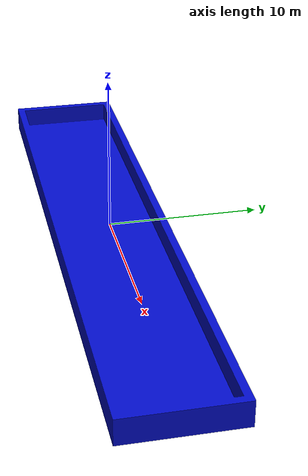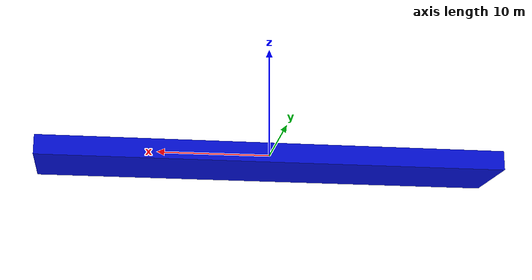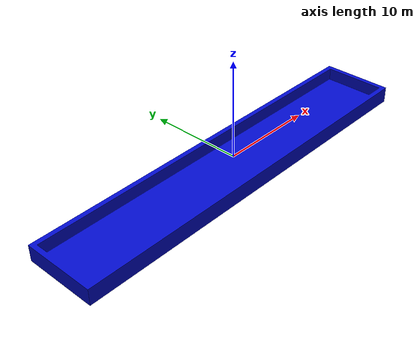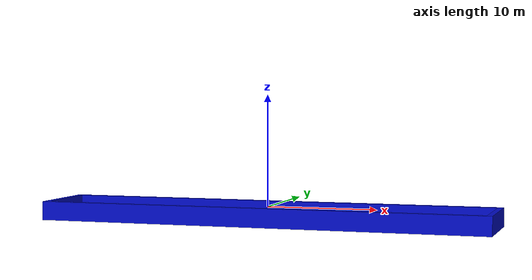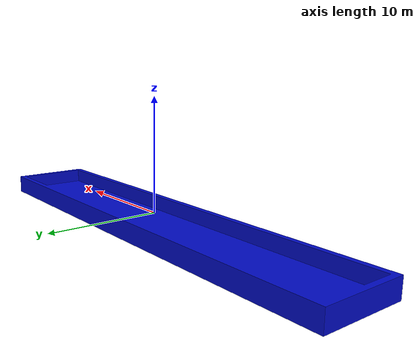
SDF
<?xml version='1.0'?>
<sdf version='1.5'>

  <model name='cybernetic_pool'>
    <pose>0 0 0.1 0 0 0</pose>
    <self_collide> 0 </self_collide>
    <static> 1</static>

    <link name='pool'>
      <pose>0 0 0.1 0 0 0</pose>
      <visual name='pool_visual'>
        <geometry>
            <mesh><uri>file://cybernetics_pool/cybernetics_pool.dae</uri></mesh>
        </geometry>
        <material>
          <script>
            <uri>file://Media/materials/scripts/sand.material</uri>
            <name>UUVSimulator/SandAndStones</name>
          </script>
          <emissive>
            0.2 0.2 0.2 1.0
          </emissive>
        </material>
      </visual>
      <collision name='pool_collision'>
        <geometry>
            <mesh><uri>file://cybernetics_pool/cybernetics_pool.dae</uri></mesh>
        </geometry>
      </collision>
    </link>

  </model>
</sdf>
